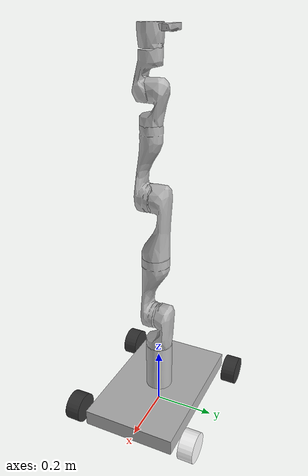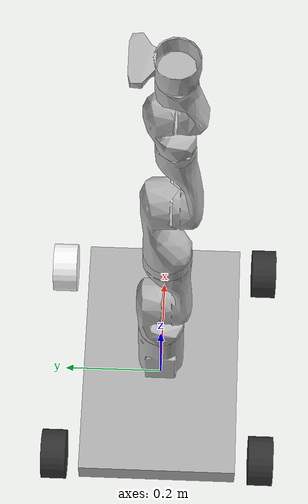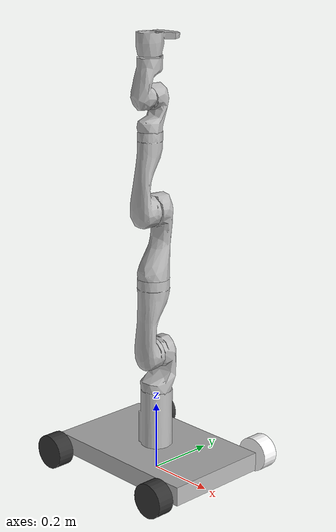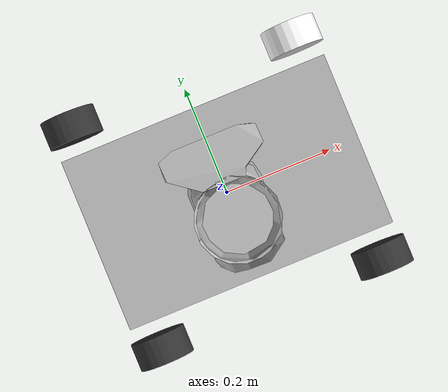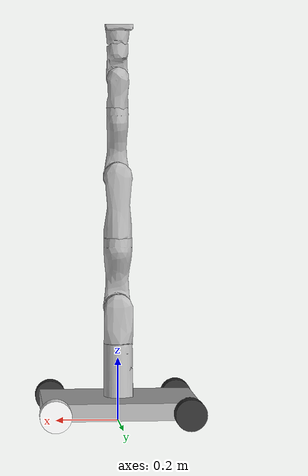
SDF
<?xml version='1.0'?>
<sdf version='1.7'>
  <model name='WMM'>
    <link name='mobile_base_link'>
      <pose>0 0 0.05 0 -0 0</pose>
      <inertial>
        <mass>1</mass>
        <inertia>
          <ixx>0.1</ixx>
          <iyy>0.1</iyy>
          <izz>0.1</izz>
          <ixy>0</ixy>
          <ixz>0</ixz>
          <iyz>0</iyz>
        </inertia>
        <pose>0 0 0 0 -0 0</pose>
      </inertial>
      <self_collide>0</self_collide>
      <enable_wind>0</enable_wind>
      <kinematic>0</kinematic>
      <visual name='mobile_base_visual'>
        <geometry>
          <box>
            <size>0.496 0.317 0.055</size>
          </box>
        </geometry>
        <material>
          <ambient>0.7 0.7 0.7 1</ambient>
          <shader type='pixel'/>
          <script>
            <name>ModelPreview_6::base_link::base_visual_MATERIAL_</name>
            <uri>__default__</uri>
          </script>
          <emissive>0 0 0 1</emissive>
        </material>
        <pose>0 0 0 0 -0 0</pose>
        <transparency>0</transparency>
        <cast_shadows>1</cast_shadows>
      </visual>
      <collision name='mobile_base_collision'>
        <laser_retro>0</laser_retro>
        <max_contacts>10</max_contacts>
        <pose>0 0 0 0 -0 0</pose>
        <geometry>
          <box>
            <size>0.496 0.317 0.055</size>
          </box>
        </geometry>
        <surface>
          <friction>
            <ode>
              <mu>1</mu>
              <mu2>1</mu2>
              <fdir1>0 0 0</fdir1>
              <slip1>0</slip1>
              <slip2>0</slip2>
            </ode>
            <torsional>
              <coefficient>1</coefficient>
              <patch_radius>0</patch_radius>
              <surface_radius>0</surface_radius>
              <use_patch_radius>1</use_patch_radius>
              <ode>
                <slip>0</slip>
              </ode>
            </torsional>
          </friction>
          <bounce>
            <restitution_coefficient>0</restitution_coefficient>
            <threshold>1e+06</threshold>
          </bounce>
          <contact>
            <collide_without_contact>0</collide_without_contact>
            <collide_without_contact_bitmask>1</collide_without_contact_bitmask>
            <collide_bitmask>1</collide_bitmask>
            <ode>
              <soft_cfm>0</soft_cfm>
              <soft_erp>0.2</soft_erp>
              <kp>1e+13</kp>
              <kd>1</kd>
              <max_vel>0.01</max_vel>
              <min_depth>0</min_depth>
            </ode>
            <bullet>
              <split_impulse>1</split_impulse>
              <split_impulse_penetration_threshold>-0.01</split_impulse_penetration_threshold>
              <soft_cfm>0</soft_cfm>
              <soft_erp>0.2</soft_erp>
              <kp>1e+13</kp>
              <kd>1</kd>
            </bullet>
          </contact>
        </surface>
      </collision>
    </link>
    <link name='wheel_back_left'>
      <pose>-0.21 0.21 0.05 1.5708 -0 0</pose>
      <inertial>
        <mass>0.1</mass>
        <inertia>
          <ixx>0.01</ixx>
          <iyy>0.01</iyy>
          <izz>0.01</izz>
          <ixy>0</ixy>
          <ixz>0</ixz>
          <iyz>0</iyz>
        </inertia>
        <pose>0 0 0 0 -0 0</pose>
      </inertial>
      <self_collide>0</self_collide>
      <enable_wind>0</enable_wind>
      <kinematic>0</kinematic>
      <gravity>1</gravity>
      <visual name='wheel_visual'>
        <geometry>
          <cylinder>
            <radius>0.05</radius>
            <length>0.05</length>
          </cylinder>
        </geometry>
        <material>
          <ambient>0.2 0.2 0.2 1</ambient>
          <shader type='pixel'>
            <normal_map>__default__</normal_map>
          </shader>
          <script>
            <name>ModelPreview_6::wheel_back_left::wheel_visual_MATERIAL_</name>
            <uri>__default__</uri>
          </script>
        </material>
        <pose>0 0 0 0 -0 0</pose>
        <transparency>0</transparency>
        <cast_shadows>1</cast_shadows>
      </visual>
      <collision name='wheel_collision'>
        <laser_retro>0</laser_retro>
        <max_contacts>10</max_contacts>
        <pose>0 0 0 0 -0 0</pose>
        <geometry>
          <cylinder>
            <radius>0.05</radius>
            <length>0.05</length>
          </cylinder>
        </geometry>
        <surface>
          <friction>
            <ode>
              <mu>1</mu>
              <mu2>1</mu2>
              <fdir1>0 0 0</fdir1>
              <slip1>0</slip1>
              <slip2>0</slip2>
            </ode>
            <torsional>
              <coefficient>1</coefficient>
              <patch_radius>0</patch_radius>
              <surface_radius>0</surface_radius>
              <use_patch_radius>1</use_patch_radius>
              <ode>
                <slip>0</slip>
              </ode>
            </torsional>
          </friction>
          <bounce>
            <restitution_coefficient>0</restitution_coefficient>
            <threshold>1e+06</threshold>
          </bounce>
          <contact>
            <collide_without_contact>0</collide_without_contact>
            <collide_without_contact_bitmask>1</collide_without_contact_bitmask>
            <collide_bitmask>1</collide_bitmask>
            <ode>
              <soft_cfm>0</soft_cfm>
              <soft_erp>0.2</soft_erp>
              <kp>1e+13</kp>
              <kd>1</kd>
              <max_vel>0.01</max_vel>
              <min_depth>0</min_depth>
            </ode>
            <bullet>
              <split_impulse>1</split_impulse>
              <split_impulse_penetration_threshold>-0.01</split_impulse_penetration_threshold>
              <soft_cfm>0</soft_cfm>
              <soft_erp>0.2</soft_erp>
              <kp>1e+13</kp>
              <kd>1</kd>
            </bullet>
          </contact>
        </surface>
      </collision>
    </link>
    <link name='wheel_back_right'>
      <pose>-0.21 -0.21 0.05 -1.5708 -0 0</pose>
      <inertial>
        <mass>0.1</mass>
        <inertia>
          <ixx>0.01</ixx>
          <iyy>0.01</iyy>
          <izz>0.01</izz>
          <ixy>0</ixy>
          <ixz>0</ixz>
          <iyz>0</iyz>
        </inertia>
        <pose>0 0 0 0 -0 0</pose>
      </inertial>
      <self_collide>0</self_collide>
      <enable_wind>0</enable_wind>
      <kinematic>0</kinematic>
      <visual name='wheel_visual'>
        <geometry>
          <cylinder>
            <radius>0.05</radius>
            <length>0.05</length>
          </cylinder>
        </geometry>
        <material>
          <ambient>0.2 0.2 0.2 1</ambient>
          <shader type='pixel'/>
          <script>
            <name>ModelPreview_6::wheel_back_right::wheel_visual_MATERIAL_</name>
            <uri>__default__</uri>
          </script>
        </material>
        <pose>0 0 0 0 -0 0</pose>
        <transparency>0</transparency>
        <cast_shadows>1</cast_shadows>
      </visual>
      <collision name='wheel_collision'>
        <laser_retro>0</laser_retro>
        <max_contacts>10</max_contacts>
        <pose>0 0 0 0 -0 0</pose>
        <geometry>
          <cylinder>
            <radius>0.05</radius>
            <length>0.05</length>
          </cylinder>
        </geometry>
        <surface>
          <friction>
            <ode>
              <mu>1</mu>
              <mu2>1</mu2>
              <fdir1>0 0 0</fdir1>
              <slip1>0</slip1>
              <slip2>0</slip2>
            </ode>
            <torsional>
              <coefficient>1</coefficient>
              <patch_radius>0</patch_radius>
              <surface_radius>0</surface_radius>
              <use_patch_radius>1</use_patch_radius>
              <ode>
                <slip>0</slip>
              </ode>
            </torsional>
          </friction>
          <bounce>
            <restitution_coefficient>0</restitution_coefficient>
            <threshold>1e+06</threshold>
          </bounce>
          <contact>
            <collide_without_contact>0</collide_without_contact>
            <collide_without_contact_bitmask>1</collide_without_contact_bitmask>
            <collide_bitmask>1</collide_bitmask>
            <ode>
              <soft_cfm>0</soft_cfm>
              <soft_erp>0.2</soft_erp>
              <kp>1e+13</kp>
              <kd>1</kd>
              <max_vel>0.01</max_vel>
              <min_depth>0</min_depth>
            </ode>
            <bullet>
              <split_impulse>1</split_impulse>
              <split_impulse_penetration_threshold>-0.01</split_impulse_penetration_threshold>
              <soft_cfm>0</soft_cfm>
              <soft_erp>0.2</soft_erp>
              <kp>1e+13</kp>
              <kd>1</kd>
            </bullet>
          </contact>
        </surface>
      </collision>
    </link>
    <link name='wheel_front_left'>
      <pose>0.21 0.21 0.05 1.5708 -0 0</pose>
      <inertial>
        <mass>0.1</mass>
        <inertia>
          <ixx>0.01</ixx>
          <iyy>0.01</iyy>
          <izz>0.01</izz>
          <ixy>0</ixy>
          <ixz>0</ixz>
          <iyz>0</iyz>
        </inertia>
        <pose>0 0 0 0 -0 0</pose>
      </inertial>
      <self_collide>0</self_collide>
      <enable_wind>0</enable_wind>
      <kinematic>0</kinematic>
      <gravity>1</gravity>
      <visual name='wheel_visual'>
        <geometry>
          <cylinder>
            <radius>0.05</radius>
            <length>0.05</length>
          </cylinder>
        </geometry>
        <material>
          <ambient>0.2 0.2 0.2 1</ambient>
          <shader type='pixel'>
            <normal_map>__default__</normal_map>
          </shader>
          <script>
            <name>ModelPreview_6::wheel_front_left::wheel_visual_MATERIAL_</name>
            <uri>__default__</uri>
          </script>
          <diffuse>1 1 1 1</diffuse>
          <specular>0 0 0 1</specular>
          <emissive>0 0 0 1</emissive>
        </material>
        <pose>0 0 0 0 -0 0</pose>
        <transparency>0</transparency>
        <cast_shadows>1</cast_shadows>
      </visual>
      <collision name='wheel_collision'>
        <laser_retro>0</laser_retro>
        <max_contacts>10</max_contacts>
        <pose>0 0 0 0 -0 0</pose>
        <geometry>
          <cylinder>
            <radius>0.05</radius>
            <length>0.05</length>
          </cylinder>
        </geometry>
        <surface>
          <friction>
            <ode>
              <mu>1</mu>
              <mu2>1</mu2>
              <fdir1>0 0 0</fdir1>
              <slip1>0</slip1>
              <slip2>0</slip2>
            </ode>
            <torsional>
              <coefficient>1</coefficient>
              <patch_radius>0</patch_radius>
              <surface_radius>0</surface_radius>
              <use_patch_radius>1</use_patch_radius>
              <ode>
                <slip>0</slip>
              </ode>
            </torsional>
          </friction>
          <bounce>
            <restitution_coefficient>0</restitution_coefficient>
            <threshold>1e+06</threshold>
          </bounce>
          <contact>
            <collide_without_contact>0</collide_without_contact>
            <collide_without_contact_bitmask>1</collide_without_contact_bitmask>
            <collide_bitmask>1</collide_bitmask>
            <ode>
              <soft_cfm>0</soft_cfm>
              <soft_erp>0.2</soft_erp>
              <kp>1e+13</kp>
              <kd>1</kd>
              <max_vel>0.01</max_vel>
              <min_depth>0</min_depth>
            </ode>
            <bullet>
              <split_impulse>1</split_impulse>
              <split_impulse_penetration_threshold>-0.01</split_impulse_penetration_threshold>
              <soft_cfm>0</soft_cfm>
              <soft_erp>0.2</soft_erp>
              <kp>1e+13</kp>
              <kd>1</kd>
            </bullet>
          </contact>
        </surface>
      </collision>
    </link>
    <link name='wheel_front_right'>
      <pose>0.21 -0.21 0.05 -1.5708 -0 0</pose>
      <inertial>
        <mass>0.1</mass>
        <inertia>
          <ixx>0.01</ixx>
          <iyy>0.01</iyy>
          <izz>0.01</izz>
          <ixy>0</ixy>
          <ixz>0</ixz>
          <iyz>0</iyz>
        </inertia>
        <pose>0 0 0 0 -0 0</pose>
      </inertial>
      <self_collide>0</self_collide>
      <enable_wind>0</enable_wind>
      <kinematic>0</kinematic>
      <visual name='wheel_visual'>
        <geometry>
          <cylinder>
            <radius>0.05</radius>
            <length>0.05</length>
          </cylinder>
        </geometry>
        <material>
          <ambient>0.2 0.2 0.2 1</ambient>
          <shader type='pixel'/>
          <script>
            <name>ModelPreview_6::wheel_front_right::wheel_visual_MATERIAL_</name>
            <uri>__default__</uri>
          </script>
        </material>
        <pose>0 0 0 0 -0 0</pose>
        <transparency>0</transparency>
        <cast_shadows>1</cast_shadows>
      </visual>
      <collision name='wheel_collision'>
        <laser_retro>0</laser_retro>
        <max_contacts>10</max_contacts>
        <pose>0 0 0 0 -0 0</pose>
        <geometry>
          <cylinder>
            <radius>0.05</radius>
            <length>0.05</length>
          </cylinder>
        </geometry>
        <surface>
          <friction>
            <ode>
              <mu>1</mu>
              <mu2>1</mu2>
              <fdir1>0 0 0</fdir1>
              <slip1>0</slip1>
              <slip2>0</slip2>
            </ode>
            <torsional>
              <coefficient>1</coefficient>
              <patch_radius>0</patch_radius>
              <surface_radius>0</surface_radius>
              <use_patch_radius>1</use_patch_radius>
              <ode>
                <slip>0</slip>
              </ode>
            </torsional>
          </friction>
          <bounce>
            <restitution_coefficient>0</restitution_coefficient>
            <threshold>1e+06</threshold>
          </bounce>
          <contact>
            <collide_without_contact>0</collide_without_contact>
            <collide_without_contact_bitmask>1</collide_without_contact_bitmask>
            <collide_bitmask>1</collide_bitmask>
            <ode>
              <soft_cfm>0</soft_cfm>
              <soft_erp>0.2</soft_erp>
              <kp>1e+13</kp>
              <kd>1</kd>
              <max_vel>0.01</max_vel>
              <min_depth>0</min_depth>
            </ode>
            <bullet>
              <split_impulse>1</split_impulse>
              <split_impulse_penetration_threshold>-0.01</split_impulse_penetration_threshold>
              <soft_cfm>0</soft_cfm>
              <soft_erp>0.2</soft_erp>
              <kp>1e+13</kp>
              <kd>1</kd>
            </bullet>
          </contact>
        </surface>
      </collision>
    </link>
    <model name='Kinova_Gen3'>
      <joint name='world_to_root' type='fixed'>
        <pose>0 0 0 0 -0 0</pose>
        <parent>mobile_base_link</parent>
        <child>base_link</child>
      </joint>
      <link name='base_link'>
        <pose>0 0 0 0 -0 0</pose>
        <inertial>
          <pose>0 0 0 0 -0 0</pose>
          <mass>1.697</mass>
          <inertia>
            <ixx>0.004622</ixx>
            <ixy>9e-06</ixy>
            <ixz>6e-05</ixz>
            <iyy>0.004495</iyy>
            <iyz>9e-06</iyz>
            <izz>0.002079</izz>
          </inertia>
        </inertial>
        <collision name='base_link_collision'>
          <pose>0 0 0 0 -0 0</pose>
          <geometry>
            <mesh>
              <scale>1 1 1</scale>
              <uri>/home/wmm/catkin_ws/src/ros_kortex/kortex_description/arms/gen3/7dof/meshes/base_link.STL</uri>
            </mesh>
          </geometry>
          <max_contacts>10</max_contacts>
          <surface>
            <contact>
              <ode/>
            </contact>
            <bounce/>
            <friction>
              <torsional>
                <ode/>
              </torsional>
              <ode/>
            </friction>
          </surface>
        </collision>
        <visual name='base_link_visual'>
          <pose>0 0 0 0 -0 0</pose>
          <geometry>
            <mesh>
              <scale>1 1 1</scale>
              <uri>/home/wmm/catkin_ws/src/ros_kortex/kortex_description/arms/gen3/7dof/meshes/base_link.STL</uri>
            </mesh>
          </geometry>
        </visual>
        <self_collide>0</self_collide>
        <enable_wind>0</enable_wind>
        <kinematic>0</kinematic>
      </link>
      <joint name='joint_1' type='revolute'>
        <pose>0 0 0 0 -0 0</pose>
        <parent>base_link</parent>
        <child>shoulder_link</child>
        <axis>
          <xyz>0 0 1</xyz>
          <limit>
            <effort>39</effort>
            <velocity>1.3963</velocity>
            <lower>-1e+16</lower>
            <upper>1e+16</upper>
          </limit>
          <dynamics>
            <spring_reference>0</spring_reference>
            <spring_stiffness>0</spring_stiffness>
          </dynamics>
        </axis>
      </joint>
      <link name='shoulder_link'>
        <pose>0 0 0.15643 -3.14159 0 0</pose>
        <inertial>
          <pose>-2.3e-05 -0.010364 -0.07336 0 -0 0</pose>
          <mass>1.3773</mass>
          <inertia>
            <ixx>0.00457</ixx>
            <ixy>1e-06</ixy>
            <ixz>2e-06</ixz>
            <iyy>0.004831</iyy>
            <iyz>0.000448</iyz>
            <izz>0.001409</izz>
          </inertia>
        </inertial>
        <collision name='shoulder_link_collision'>
          <pose>0 0 0 0 -0 0</pose>
          <geometry>
            <mesh>
              <scale>1 1 1</scale>
              <uri>/home/wmm/catkin_ws/src/ros_kortex/kortex_description/arms/gen3/7dof/meshes/shoulder_link.STL</uri>
            </mesh>
          </geometry>
          <max_contacts>10</max_contacts>
          <surface>
            <contact>
              <ode/>
            </contact>
            <bounce/>
            <friction>
              <torsional>
                <ode/>
              </torsional>
              <ode/>
            </friction>
          </surface>
        </collision>
        <visual name='shoulder_link_visual'>
          <pose>0 0 0 0 -0 0</pose>
          <geometry>
            <mesh>
              <scale>1 1 1</scale>
              <uri>/home/wmm/catkin_ws/src/ros_kortex/kortex_description/arms/gen3/7dof/meshes/shoulder_link.STL</uri>
            </mesh>
          </geometry>
        </visual>
        <self_collide>0</self_collide>
        <enable_wind>0</enable_wind>
        <kinematic>0</kinematic>
      </link>
      <joint name='joint_2' type='revolute'>
        <pose>0 -0 -0 0 -0 0</pose>
        <parent>shoulder_link</parent>
        <child>half_arm_1_link</child>
        <axis>
          <xyz>0 0 1</xyz>
          <limit>
            <lower>-2.24</lower>
            <upper>2.24</upper>
            <effort>39</effort>
            <velocity>1.3963</velocity>
          </limit>
          <dynamics>
            <spring_reference>0</spring_reference>
            <spring_stiffness>0</spring_stiffness>
          </dynamics>
        </axis>
      </joint>
      <link name='half_arm_1_link'>
        <pose>0 -0.005375 0.28481 -1.57079 0 0</pose>
        <inertial>
          <pose>-4.4e-05 -0.09958 -0.013278 0 -0 0</pose>
          <mass>1.1636</mass>
          <inertia>
            <ixx>0.011088</ixx>
            <ixy>5e-06</ixy>
            <ixz>0</ixz>
            <iyy>0.001072</iyy>
            <iyz>-0.000691</iyz>
            <izz>0.011255</izz>
          </inertia>
        </inertial>
        <collision name='half_arm_1_link_collision'>
          <pose>0 0 0 0 -0 0</pose>
          <geometry>
            <mesh>
              <scale>1 1 1</scale>
              <uri>/home/wmm/catkin_ws/src/ros_kortex/kortex_description/arms/gen3/7dof/meshes/half_arm_1_link.STL</uri>
            </mesh>
          </geometry>
          <max_contacts>10</max_contacts>
          <surface>
            <contact>
              <ode/>
            </contact>
            <bounce/>
            <friction>
              <torsional>
                <ode/>
              </torsional>
              <ode/>
            </friction>
          </surface>
        </collision>
        <visual name='half_arm_1_link_visual'>
          <pose>0 0 0 0 -0 0</pose>
          <geometry>
            <mesh>
              <scale>1 1 1</scale>
              <uri>/home/wmm/catkin_ws/src/ros_kortex/kortex_description/arms/gen3/7dof/meshes/half_arm_1_link.STL</uri>
            </mesh>
          </geometry>
        </visual>
        <self_collide>0</self_collide>
        <enable_wind>0</enable_wind>
        <kinematic>0</kinematic>
      </link>
      <joint name='joint_3' type='revolute'>
        <pose>0 0 -0 0 -0 0</pose>
        <parent>half_arm_1_link</parent>
        <child>half_arm_2_link</child>
        <axis>
          <xyz>0 0 1</xyz>
          <limit>
            <effort>39</effort>
            <velocity>1.3963</velocity>
            <lower>-1e+16</lower>
            <upper>1e+16</upper>
          </limit>
          <dynamics>
            <spring_reference>0</spring_reference>
            <spring_stiffness>0</spring_stiffness>
          </dynamics>
        </axis>
      </joint>
      <link name='half_arm_2_link'>
        <pose>0 -0.011752 0.49519 -3.14159 0 0</pose>
        <inertial>
          <pose>-4.4e-05 -0.006641 -0.117892 0 -0 0</pose>
          <mass>1.1636</mass>
          <inertia>
            <ixx>0.010932</ixx>
            <ixy>0</ixy>
            <ixz>-7e-06</ixz>
            <iyy>0.011127</iyy>
            <iyz>0.000606</iyz>
            <izz>0.001043</izz>
          </inertia>
        </inertial>
        <collision name='half_arm_2_link_collision'>
          <pose>0 0 0 0 -0 0</pose>
          <geometry>
            <mesh>
              <scale>1 1 1</scale>
              <uri>/home/wmm/catkin_ws/src/ros_kortex/kortex_description/arms/gen3/7dof/meshes/half_arm_2_link.STL</uri>
            </mesh>
          </geometry>
          <max_contacts>10</max_contacts>
          <surface>
            <contact>
              <ode/>
            </contact>
            <bounce/>
            <friction>
              <torsional>
                <ode/>
              </torsional>
              <ode/>
            </friction>
          </surface>
        </collision>
        <visual name='half_arm_2_link_visual'>
          <pose>0 0 0 0 -0 0</pose>
          <geometry>
            <mesh>
              <scale>1 1 1</scale>
              <uri>/home/wmm/catkin_ws/src/ros_kortex/kortex_description/arms/gen3/7dof/meshes/half_arm_2_link.STL</uri>
            </mesh>
          </geometry>
        </visual>
        <self_collide>0</self_collide>
        <enable_wind>0</enable_wind>
        <kinematic>0</kinematic>
      </link>
      <joint name='joint_4' type='revolute'>
        <pose>0 -0 -0 0 -0 0</pose>
        <parent>half_arm_2_link</parent>
        <child>forearm_link</child>
        <axis>
          <xyz>0 0 1</xyz>
          <limit>
            <lower>-2.57</lower>
            <upper>2.57</upper>
            <effort>39</effort>
            <velocity>1.3963</velocity>
          </limit>
          <dynamics>
            <spring_reference>0</spring_reference>
            <spring_stiffness>0</spring_stiffness>
          </dynamics>
        </axis>
      </joint>
      <link name='forearm_link'>
        <pose>0 -0.018127 0.70557 -1.57079 0 0</pose>
        <inertial>
          <pose>-1.8e-05 -0.075478 -0.015006 0 -0 0</pose>
          <mass>0.9302</mass>
          <inertia>
            <ixx>0.008147</ixx>
            <ixy>-1e-06</ixy>
            <ixz>0</ixz>
            <iyy>0.000631</iyy>
            <iyz>-0.0005</iyz>
            <izz>0.008316</izz>
          </inertia>
        </inertial>
        <collision name='forearm_link_collision'>
          <pose>0 0 0 0 -0 0</pose>
          <geometry>
            <mesh>
              <scale>1 1 1</scale>
              <uri>/home/wmm/catkin_ws/src/ros_kortex/kortex_description/arms/gen3/7dof/meshes/forearm_link.STL</uri>
            </mesh>
          </geometry>
          <max_contacts>10</max_contacts>
          <surface>
            <contact>
              <ode/>
            </contact>
            <bounce/>
            <friction>
              <torsional>
                <ode/>
              </torsional>
              <ode/>
            </friction>
          </surface>
        </collision>
        <visual name='forearm_link_visual'>
          <pose>0 0 0 0 -0 0</pose>
          <geometry>
            <mesh>
              <scale>1 1 1</scale>
              <uri>/home/wmm/catkin_ws/src/ros_kortex/kortex_description/arms/gen3/7dof/meshes/forearm_link.STL</uri>
            </mesh>
          </geometry>
        </visual>
        <self_collide>0</self_collide>
        <enable_wind>0</enable_wind>
        <kinematic>0</kinematic>
      </link>
      <joint name='joint_5' type='revolute'>
        <pose>0 0 -0 0 -0 0</pose>
        <parent>forearm_link</parent>
        <child>spherical_wrist_1_link</child>
        <axis>
          <xyz>0 0 1</xyz>
          <limit>
            <effort>9</effort>
            <velocity>1.2218</velocity>
            <lower>-1e+16</lower>
            <upper>1e+16</upper>
          </limit>
          <dynamics>
            <spring_reference>0</spring_reference>
            <spring_stiffness>0</spring_stiffness>
          </dynamics>
        </axis>
      </joint>
      <link name='spherical_wrist_1_link'>
        <pose>0 -0.024504 0.914 -3.14159 0 0</pose>
        <inertial>
          <pose>1e-06 -0.009432 -0.063883 0 -0 0</pose>
          <mass>0.6781</mass>
          <inertia>
            <ixx>0.001596</ixx>
            <ixy>0</ixy>
            <ixz>0</ixz>
            <iyy>0.001607</iyy>
            <iyz>0.000256</iyz>
            <izz>0.000399</izz>
          </inertia>
        </inertial>
        <collision name='spherical_wrist_1_link_collision'>
          <pose>0 0 0 0 -0 0</pose>
          <geometry>
            <mesh>
              <scale>1 1 1</scale>
              <uri>/home/wmm/catkin_ws/src/ros_kortex/kortex_description/arms/gen3/7dof/meshes/spherical_wrist_1_link.STL</uri>
            </mesh>
          </geometry>
          <max_contacts>10</max_contacts>
          <surface>
            <contact>
              <ode/>
            </contact>
            <bounce/>
            <friction>
              <torsional>
                <ode/>
              </torsional>
              <ode/>
            </friction>
          </surface>
        </collision>
        <visual name='spherical_wrist_1_link_visual'>
          <pose>0 0 0 0 -0 0</pose>
          <geometry>
            <mesh>
              <scale>1 1 1</scale>
              <uri>/home/wmm/catkin_ws/src/ros_kortex/kortex_description/arms/gen3/7dof/meshes/spherical_wrist_1_link.STL</uri>
            </mesh>
          </geometry>
        </visual>
        <self_collide>0</self_collide>
        <enable_wind>0</enable_wind>
        <kinematic>0</kinematic>
      </link>
      <joint name='joint_6' type='revolute'>
        <pose>0 -0 -0 0 -0 0</pose>
        <parent>spherical_wrist_1_link</parent>
        <child>spherical_wrist_2_link</child>
        <axis>
          <xyz>0 0 1</xyz>
          <limit>
            <lower>-2.09</lower>
            <upper>2.09</upper>
            <effort>9</effort>
            <velocity>1.2218</velocity>
          </limit>
          <dynamics>
            <spring_reference>0</spring_reference>
            <spring_stiffness>0</spring_stiffness>
          </dynamics>
        </axis>
      </joint>
      <link name='spherical_wrist_2_link'>
        <pose>0 -0.024679 1.01993 -1.57079 0 0</pose>
        <inertial>
          <pose>1e-06 -0.045483 -0.00965 0 -0 0</pose>
          <mass>0.6781</mass>
          <inertia>
            <ixx>0.001641</ixx>
            <ixy>0</ixy>
            <ixz>0</ixz>
            <iyy>0.00041</iyy>
            <iyz>-0.000278</iyz>
            <izz>0.001641</izz>
          </inertia>
        </inertial>
        <collision name='spherical_wrist_2_link_collision'>
          <pose>0 0 0 0 -0 0</pose>
          <geometry>
            <mesh>
              <scale>1 1 1</scale>
              <uri>/home/wmm/catkin_ws/src/ros_kortex/kortex_description/arms/gen3/7dof/meshes/spherical_wrist_2_link.STL</uri>
            </mesh>
          </geometry>
          <max_contacts>10</max_contacts>
          <surface>
            <contact>
              <ode/>
            </contact>
            <bounce/>
            <friction>
              <torsional>
                <ode/>
              </torsional>
              <ode/>
            </friction>
          </surface>
        </collision>
        <visual name='spherical_wrist_2_link_visual'>
          <pose>0 0 0 0 -0 0</pose>
          <geometry>
            <mesh>
              <scale>1 1 1</scale>
              <uri>/home/wmm/catkin_ws/src/ros_kortex/kortex_description/arms/gen3/7dof/meshes/spherical_wrist_2_link.STL</uri>
            </mesh>
          </geometry>
        </visual>
        <self_collide>0</self_collide>
        <enable_wind>0</enable_wind>
        <kinematic>0</kinematic>
      </link>
      <joint name='joint_7' type='revolute'>
        <pose>0 -0 -0 0 -0 0</pose>
        <parent>spherical_wrist_2_link</parent>
        <child>bracelet_link</child>
        <axis>
          <xyz>0 0 1</xyz>
          <limit>
            <effort>9</effort>
            <velocity>1.2218</velocity>
            <lower>-1e+16</lower>
            <upper>1e+16</upper>
          </limit>
          <dynamics>
            <spring_reference>0</spring_reference>
            <spring_stiffness>0</spring_stiffness>
          </dynamics>
        </axis>
      </joint>
      <link name='bracelet_link'>
        <pose>0 -0.024854 1.12586 -3.14159 0 0</pose>
        <inertial>
          <pose>0.000281 0.011402 -0.029798 0 -0 0</pose>
          <mass>0.5</mass>
          <inertia>
            <ixx>0.000587</ixx>
            <ixy>3e-06</ixy>
            <ixz>3e-06</ixz>
            <iyy>0.000369</iyy>
            <iyz>-0.000118</iyz>
            <izz>0.000609</izz>
          </inertia>
        </inertial>
        <collision name='bracelet_link_collision'>
          <pose>0 0 0 0 -0 0</pose>
          <geometry>
            <mesh>
              <scale>1 1 1</scale>
              <uri>/home/wmm/catkin_ws/src/ros_kortex/kortex_description/arms/gen3/7dof/meshes/bracelet_with_vision_link.STL</uri>
            </mesh>
          </geometry>
          <max_contacts>10</max_contacts>
          <surface>
            <contact>
              <ode/>
            </contact>
            <bounce/>
            <friction>
              <torsional>
                <ode/>
              </torsional>
              <ode/>
            </friction>
          </surface>
        </collision>
        <visual name='bracelet_link_visual'>
          <pose>0 0 0 0 -0 0</pose>
          <geometry>
            <mesh>
              <scale>1 1 1</scale>
              <uri>/home/wmm/catkin_ws/src/ros_kortex/kortex_description/arms/gen3/7dof/meshes/bracelet_with_vision_link.STL</uri>
            </mesh>
          </geometry>
        </visual>
        <self_collide>0</self_collide>
        <enable_wind>0</enable_wind>
        <kinematic>0</kinematic>
      </link>
      <plugin name='gazebo_ros_control' filename='libgazebo_ros_control.so'>
        <legacyModeNS>1</legacyModeNS>
        <robotNamespace>my_gen3</robotNamespace>
      </plugin>
      <frame name='camera_module' attached_to='end_effector_link'>
        <pose>0 0.05639 -0.00305 0 -0 3.14159</pose>
      </frame>
      <frame name='camera_link' attached_to='camera_module'/>
      <frame name='color_module' attached_to='end_effector_link'>
        <pose>0 0.05639 -0.00305 0 -0 3.14159</pose>
      </frame>
      <frame name='camera_color_frame' attached_to='color_module'/>
      <frame name='depth_module' attached_to='end_effector_link'>
        <pose>0.0275 0.066 -0.00305 0 -0 3.14159</pose>
      </frame>
      <frame name='camera_depth_frame' attached_to='depth_module'/>
      <frame name='tool_frame_joint' attached_to='end_effector_link'>
        <pose>0 0 0 0 -0 0</pose>
      </frame>
      <frame name='tool_frame' attached_to='tool_frame_joint'/>
      <frame name='end_effector' attached_to='bracelet_link'>
        <pose>0 0 -0.061525 3.14159 -0 0</pose>
      </frame>
      <frame name='end_effector_link' attached_to='end_effector'/>
      <pose>0 0 0.0775 0 -0 0</pose> <!-- change this to change arm position on robot-->
    </model>
    <joint name='base_link_JOINT_2' type='fixed'>
      <parent>mobile_base_link</parent>
      <child>Kinova_Gen3::base_link</child>
      <pose>0 0 0 0 -0 0</pose>
      <physics>
        <ode>
          <limit>
            <cfm>0</cfm>
            <erp>0.2</erp>
          </limit>
          <suspension>
            <cfm>0</cfm>
            <erp>0.2</erp>
          </suspension>
        </ode>
      </physics>
    </joint>
    <joint name='joint_wheel_back_left' type='revolute'>
      <parent>mobile_base_link</parent>
      <child>wheel_back_left</child>
      <pose>0 0 0 0 -0 0</pose>
      <axis>
        <xyz>0 0 1</xyz>
        <limit>
          <lower>-1e+16</lower>
          <upper>1e+16</upper>
          <effort>-1</effort>
          <velocity>-1</velocity>
        </limit>
        <dynamics>
          <spring_reference>0</spring_reference>
          <spring_stiffness>0</spring_stiffness>
          <damping>0</damping>
          <friction>0</friction>
        </dynamics>
      </axis>
      <physics>
        <ode>
          <limit>
            <cfm>0</cfm>
            <erp>0.2</erp>
          </limit>
          <suspension>
            <cfm>0</cfm>
            <erp>0.2</erp>
          </suspension>
        </ode>
      </physics>
    </joint>
    <joint name='joint_wheel_back_right' type='revolute'>
      <parent>mobile_base_link</parent>
      <child>wheel_back_right</child>
      <pose>0 0 0 0 -0 0</pose>
      <axis>
        <xyz>0 0 1</xyz>
        <limit>
          <lower>-1e+16</lower>
          <upper>1e+16</upper>
          <effort>-1</effort>
          <velocity>-1</velocity>
        </limit>
        <dynamics>
          <spring_reference>0</spring_reference>
          <spring_stiffness>0</spring_stiffness>
          <damping>0</damping>
          <friction>0</friction>
        </dynamics>
      </axis>
      <physics>
        <ode>
          <limit>
            <cfm>0</cfm>
            <erp>0.2</erp>
          </limit>
          <suspension>
            <cfm>0</cfm>
            <erp>0.2</erp>
          </suspension>
        </ode>
      </physics>
    </joint>
    <joint name='joint_wheel_front_left' type='revolute'>
      <parent>mobile_base_link</parent>
      <child>wheel_front_left</child>
      <pose>0 0 0 0 -0 0</pose>
      <axis>
        <xyz>0 0 1</xyz>
        <limit>
          <lower>-1e+16</lower>
          <upper>1e+16</upper>
          <effort>-1</effort>
          <velocity>-1</velocity>
        </limit>
        <dynamics>
          <spring_reference>0</spring_reference>
          <spring_stiffness>0</spring_stiffness>
          <damping>0</damping>
          <friction>0</friction>
        </dynamics>
      </axis>
      <physics>
        <ode>
          <limit>
            <cfm>0</cfm>
            <erp>0.2</erp>
          </limit>
          <suspension>
            <cfm>0</cfm>
            <erp>0.2</erp>
          </suspension>
        </ode>
      </physics>
    </joint>
    <joint name='joint_wheel_front_right' type='revolute'>
      <parent>mobile_base_link</parent>
      <child>wheel_front_right</child>
      <pose>0 0 0 0 -0 0</pose>
      <axis>
        <xyz>0 0 1</xyz>
        <limit>
          <lower>-1e+16</lower>
          <upper>1e+16</upper>
          <effort>-1</effort>
          <velocity>-1</velocity>
        </limit>
        <dynamics>
          <spring_reference>0</spring_reference>
          <spring_stiffness>0</spring_stiffness>
          <damping>0</damping>
          <friction>0</friction>
        </dynamics>
      </axis>
      <physics>
        <ode>
          <limit>
            <cfm>0</cfm>
            <erp>0.2</erp>
          </limit>
          <suspension>
            <cfm>0</cfm>
            <erp>0.2</erp>
          </suspension>
        </ode>
      </physics>
    </joint>

    <!-- Gazebo ROS Control Plugin -->
    <plugin name="gazebo_ros_control" filename="libgazebo_ros_control.so">
      <robotNamespace>/</robotNamespace>
      <robotSimType>gazebo_ros_control/DefaultRobotHWSim</robotSimType>
    </plugin>

    <static>0</static>
    <allow_auto_disable>1</allow_auto_disable>
  </model>
</sdf>
